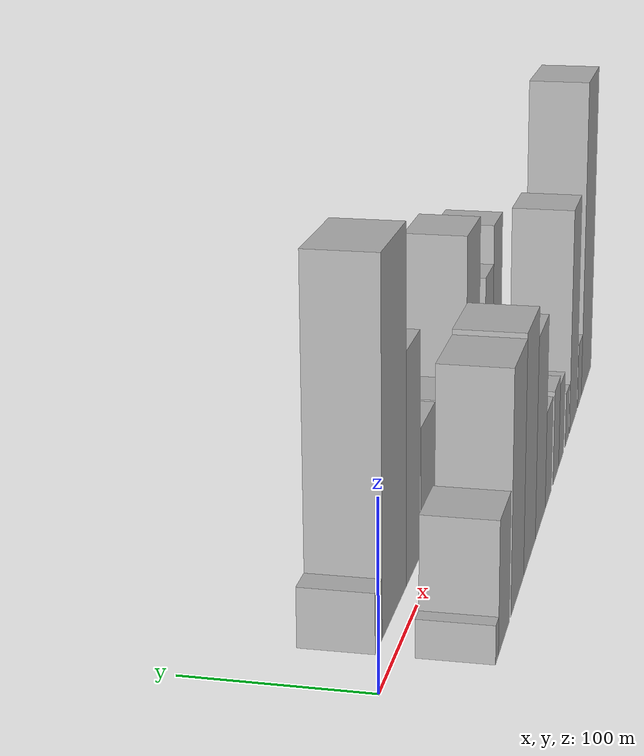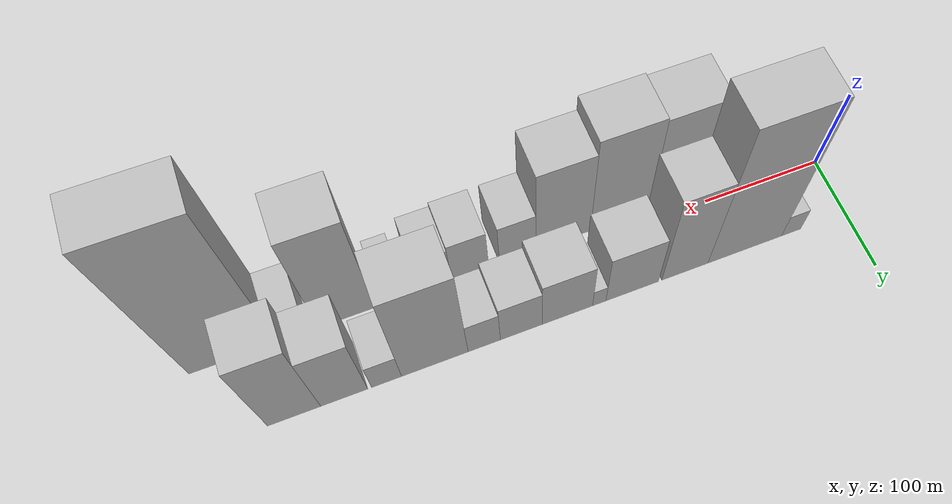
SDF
<sdf version="1.6">
 <world name="default">
  <scene>
   <sky><clouds><speed>12</speed></clouds></sky>
   <ambient>0.4 0.4 0.4 1</ambient>
   <background>0.7 0.7 0.7 1</background>
   <shadows>1</shadows>
  </scene>
  <gravity>0 0 -9.8066</gravity>
  <magnetic_field>6e-06 2.3e-05 -4.2e-05</magnetic_field>
  <physics default="0" name="default_physics" type="ode">
   <ode>
    <solver>
     <type>quick</type>
     <iters>10</iters>
     <sor>1.0</sor>
     <use_dynamic_moi_rescaling>0</use_dynamic_moi_rescaling>
    </solver>
    <constraints>
     <cfm>0</cfm>
     <erp>0.2</erp>
     <contact_max_correcting_vel>100</contact_max_correcting_vel>
     <contact_surface_layer>0.001</contact_surface_layer>
    </constraints>
   </ode>
   <max_step_size>0.004</max_step_size>
   <real_time_factor>1</real_time_factor>
   <real_time_update_rate>250</real_time_update_rate>
  </physics>
  <light name="sun" type="directional">
   <pose>0 0 10 0 0 0</pose>
   <diffuse>0.8 0.8 0.8 1</diffuse>
   <specular>0.2 0.2 0.2 1</specular>
   <attenuation>
    <range>1000</range>
    <constant>0.9</constant>
    <linear>0.01</linear>
    <quadratic>0.001</quadratic>
   </attenuation>
   <direction>-0.5 0.1 -0.9</direction>
  </light>
  <model name="building_1">
   <static>1</static>
   <pose>48.6336 30.0000 0 0.000000 0.000000 1.570796</pose>
   <link name="link">
    <pose>0 0 16.50 0 0 0</pose>
    <collision name="collision"><geometry><box><size>40.0000 17.2673 33.0000</size></box></geometry></collision>
    <visual name="visual">
     <cast_shadows>0</cast_shadows>
     <geometry><box><size>40.0000 17.2673 33.0000</size></box></geometry>
     <material>
      <script>
       <uri>model://HANNAS_wall/materials/scripts</uri>
       <uri>model://HANNAS_wall/materials/textures</uri>
       <name>vrc/HANNAS_wall</name>
      </script>
     </material>
    </visual>
   </link>
  </model>
  <model name="building_2">
   <static>1</static>
   <pose>89.6905 30.0000 0 0.000000 0.000000 1.570796</pose>
   <link name="link">
    <pose>0 0 100.50 0 0 0</pose>
    <collision name="collision"><geometry><box><size>40.0000 64.8464 201.0000</size></box></geometry></collision>
    <visual name="visual">
     <cast_shadows>0</cast_shadows>
     <geometry><box><size>40.0000 64.8464 201.0000</size></box></geometry>
     <material>
      <script>
       <uri>model://HANNAS_wall/materials/scripts</uri>
       <uri>model://HANNAS_wall/materials/textures</uri>
       <name>vrc/HANNAS_wall</name>
      </script>
     </material>
    </visual>
   </link>
  </model>
  <model name="building_3">
   <static>1</static>
   <pose>141.9586 30.0000 0 0.000000 0.000000 1.570796</pose>
   <link name="link">
    <pose>0 0 66.00 0 0 0</pose>
    <collision name="collision"><geometry><box><size>40.0000 39.6897 132.0000</size></box></geometry></collision>
    <visual name="visual">
     <cast_shadows>0</cast_shadows>
     <geometry><box><size>40.0000 39.6897 132.0000</size></box></geometry>
     <material>
      <script>
       <uri>model://HANNAS_wall/materials/scripts</uri>
       <uri>model://HANNAS_wall/materials/textures</uri>
       <name>vrc/HANNAS_wall</name>
      </script>
     </material>
    </visual>
   </link>
  </model>
  <model name="building_4">
   <static>1</static>
   <pose>187.0461 30.0000 0 0.000000 0.000000 1.570796</pose>
   <link name="link">
    <pose>0 0 37.50 0 0 0</pose>
    <collision name="collision"><geometry><box><size>40.0000 44.4853 75.0000</size></box></geometry></collision>
    <visual name="visual">
     <cast_shadows>0</cast_shadows>
     <geometry><box><size>40.0000 44.4853 75.0000</size></box></geometry>
     <material>
      <script>
       <uri>model://HANNAS_wall/materials/scripts</uri>
       <uri>model://HANNAS_wall/materials/textures</uri>
       <name>vrc/HANNAS_wall</name>
      </script>
     </material>
    </visual>
   </link>
  </model>
  <model name="building_5">
   <static>1</static>
   <pose>214.8924 30.0000 0 0.000000 0.000000 1.570796</pose>
   <link name="link">
    <pose>0 0 13.50 0 0 0</pose>
    <collision name="collision"><geometry><box><size>40.0000 11.2072 27.0000</size></box></geometry></collision>
    <visual name="visual">
     <cast_shadows>0</cast_shadows>
     <geometry><box><size>40.0000 11.2072 27.0000</size></box></geometry>
     <material>
      <script>
       <uri>model://HANNAS_wall/materials/scripts</uri>
       <uri>model://HANNAS_wall/materials/textures</uri>
       <name>vrc/HANNAS_wall</name>
      </script>
     </material>
    </visual>
   </link>
  </model>
  <model name="building_6">
   <static>1</static>
   <pose>241.4254 30.0000 0 0.000000 0.000000 1.570796</pose>
   <link name="link">
    <pose>0 0 36.00 0 0 0</pose>
    <collision name="collision"><geometry><box><size>40.0000 41.8588 72.0000</size></box></geometry></collision>
    <visual name="visual">
     <cast_shadows>0</cast_shadows>
     <geometry><box><size>40.0000 41.8588 72.0000</size></box></geometry>
     <material>
      <script>
       <uri>model://HANNAS_wall/materials/scripts</uri>
       <uri>model://HANNAS_wall/materials/textures</uri>
       <name>vrc/HANNAS_wall</name>
      </script>
     </material>
    </visual>
   </link>
  </model>
  <model name="building_7">
   <static>1</static>
   <pose>279.3528 30.0000 0 0.000000 0.000000 1.570796</pose>
   <link name="link">
    <pose>0 0 30.00 0 0 0</pose>
    <collision name="collision"><geometry><box><size>40.0000 33.9959 60.0000</size></box></geometry></collision>
    <visual name="visual">
     <cast_shadows>0</cast_shadows>
     <geometry><box><size>40.0000 33.9959 60.0000</size></box></geometry>
     <material>
      <script>
       <uri>model://HANNAS_wall/materials/scripts</uri>
       <uri>model://HANNAS_wall/materials/textures</uri>
       <name>vrc/HANNAS_wall</name>
      </script>
     </material>
    </visual>
   </link>
  </model>
  <model name="building_8">
   <static>1</static>
   <pose>309.3908 30.0000 0 0.000000 0.000000 1.570796</pose>
   <link name="link">
    <pose>0 0 25.50 0 0 0</pose>
    <collision name="collision"><geometry><box><size>40.0000 26.0800 51.0000</size></box></geometry></collision>
    <visual name="visual">
     <cast_shadows>0</cast_shadows>
     <geometry><box><size>40.0000 26.0800 51.0000</size></box></geometry>
     <material>
      <script>
       <uri>model://HANNAS_wall/materials/scripts</uri>
       <uri>model://HANNAS_wall/materials/textures</uri>
       <name>vrc/HANNAS_wall</name>
      </script>
     </material>
    </visual>
   </link>
  </model>
  <model name="building_9">
   <static>1</static>
   <pose>348.8653 30.0000 0 0.000000 0.000000 1.570796</pose>
   <link name="link">
    <pose>0 0 72.00 0 0 0</pose>
    <collision name="collision"><geometry><box><size>40.0000 52.8689 144.0000</size></box></geometry></collision>
    <visual name="visual">
     <cast_shadows>0</cast_shadows>
     <geometry><box><size>40.0000 52.8689 144.0000</size></box></geometry>
     <material>
      <script>
       <uri>model://HANNAS_wall/materials/scripts</uri>
       <uri>model://HANNAS_wall/materials/textures</uri>
       <name>vrc/HANNAS_wall</name>
      </script>
     </material>
    </visual>
   </link>
  </model>
  <model name="building_10">
   <static>1</static>
   <pose>386.9955 30.0000 0 0.000000 0.000000 1.570796</pose>
   <link name="link">
    <pose>0 0 21.00 0 0 0</pose>
    <collision name="collision"><geometry><box><size>40.0000 23.3917 42.0000</size></box></geometry></collision>
    <visual name="visual">
     <cast_shadows>0</cast_shadows>
     <geometry><box><size>40.0000 23.3917 42.0000</size></box></geometry>
     <material>
      <script>
       <uri>model://HANNAS_wall/materials/scripts</uri>
       <uri>model://HANNAS_wall/materials/textures</uri>
       <name>vrc/HANNAS_wall</name>
      </script>
     </material>
    </visual>
   </link>
  </model>
  <model name="building_11">
   <static>1</static>
   <pose>419.8561 30.0000 0 0.000000 0.000000 1.570796</pose>
   <link name="link">
    <pose>0 0 48.00 0 0 0</pose>
    <collision name="collision"><geometry><box><size>40.0000 36.3294 96.0000</size></box></geometry></collision>
    <visual name="visual">
     <cast_shadows>0</cast_shadows>
     <geometry><box><size>40.0000 36.3294 96.0000</size></box></geometry>
     <material>
      <script>
       <uri>model://HANNAS_wall/materials/scripts</uri>
       <uri>model://HANNAS_wall/materials/textures</uri>
       <name>vrc/HANNAS_wall</name>
      </script>
     </material>
    </visual>
   </link>
  </model>
  <model name="building_12">
   <static>1</static>
   <pose>458.2230 30.0000 0 0.000000 0.000000 1.570796</pose>
   <link name="link">
    <pose>0 0 61.50 0 0 0</pose>
    <collision name="collision"><geometry><box><size>40.0000 40.4044 123.0000</size></box></geometry></collision>
    <visual name="visual">
     <cast_shadows>0</cast_shadows>
     <geometry><box><size>40.0000 40.4044 123.0000</size></box></geometry>
     <material>
      <script>
       <uri>model://HANNAS_wall/materials/scripts</uri>
       <uri>model://HANNAS_wall/materials/textures</uri>
       <name>vrc/HANNAS_wall</name>
      </script>
     </material>
    </visual>
   </link>
  </model>
  <model name="building_13">
   <static>1</static>
   <pose>44.9493 -30.0000 0 0.000000 0.000000 1.570796</pose>
   <link name="link">
    <pose>0 0 10.50 0 0 0</pose>
    <collision name="collision"><geometry><box><size>40.0000 9.8985 21.0000</size></box></geometry></collision>
    <visual name="visual">
     <cast_shadows>0</cast_shadows>
     <geometry><box><size>40.0000 9.8985 21.0000</size></box></geometry>
     <material>
      <script>
       <uri>model://HANNAS_wall/materials/scripts</uri>
       <uri>model://HANNAS_wall/materials/textures</uri>
       <name>vrc/HANNAS_wall</name>
      </script>
     </material>
    </visual>
   </link>
  </model>
  <model name="building_14">
   <static>1</static>
   <pose>69.4483 -30.0000 0 0.000000 0.000000 1.570796</pose>
   <link name="link">
    <pose>0 0 36.00 0 0 0</pose>
    <collision name="collision"><geometry><box><size>40.0000 39.0995 72.0000</size></box></geometry></collision>
    <visual name="visual">
     <cast_shadows>0</cast_shadows>
     <geometry><box><size>40.0000 39.0995 72.0000</size></box></geometry>
     <material>
      <script>
       <uri>model://HANNAS_wall/materials/scripts</uri>
       <uri>model://HANNAS_wall/materials/textures</uri>
       <name>vrc/HANNAS_wall</name>
      </script>
     </material>
    </visual>
   </link>
  </model>
  <model name="building_15">
   <static>1</static>
   <pose>120.4078 -30.0000 0 0.000000 0.000000 1.570796</pose>
   <link name="link">
    <pose>0 0 67.50 0 0 0</pose>
    <collision name="collision"><geometry><box><size>40.0000 50.8197 135.0000</size></box></geometry></collision>
    <visual name="visual">
     <cast_shadows>0</cast_shadows>
     <geometry><box><size>40.0000 50.8197 135.0000</size></box></geometry>
     <material>
      <script>
       <uri>model://HANNAS_wall/materials/scripts</uri>
       <uri>model://HANNAS_wall/materials/textures</uri>
       <name>vrc/HANNAS_wall</name>
      </script>
     </material>
    </visual>
   </link>
  </model>
  <model name="building_16">
   <static>1</static>
   <pose>171.4728 -30.0000 0 0.000000 0.000000 1.570796</pose>
   <link name="link">
    <pose>0 0 69.00 0 0 0</pose>
    <collision name="collision"><geometry><box><size>40.0000 51.3102 138.0000</size></box></geometry></collision>
    <visual name="visual">
     <cast_shadows>0</cast_shadows>
     <geometry><box><size>40.0000 51.3102 138.0000</size></box></geometry>
     <material>
      <script>
       <uri>model://HANNAS_wall/materials/scripts</uri>
       <uri>model://HANNAS_wall/materials/textures</uri>
       <name>vrc/HANNAS_wall</name>
      </script>
     </material>
    </visual>
   </link>
  </model>
  <model name="building_17">
   <static>1</static>
   <pose>220.5222 -30.0000 0 0.000000 0.000000 1.570796</pose>
   <link name="link">
    <pose>0 0 60.00 0 0 0</pose>
    <collision name="collision"><geometry><box><size>40.0000 46.7887 120.0000</size></box></geometry></collision>
    <visual name="visual">
     <cast_shadows>0</cast_shadows>
     <geometry><box><size>40.0000 46.7887 120.0000</size></box></geometry>
     <material>
      <script>
       <uri>model://HANNAS_wall/materials/scripts</uri>
       <uri>model://HANNAS_wall/materials/textures</uri>
       <name>vrc/HANNAS_wall</name>
      </script>
     </material>
    </visual>
   </link>
  </model>
  <model name="building_18">
   <static>1</static>
   <pose>259.2537 -30.0000 0 0.000000 0.000000 1.570796</pose>
   <link name="link">
    <pose>0 0 30.00 0 0 0</pose>
    <collision name="collision"><geometry><box><size>40.0000 30.6743 60.0000</size></box></geometry></collision>
    <visual name="visual">
     <cast_shadows>0</cast_shadows>
     <geometry><box><size>40.0000 30.6743 60.0000</size></box></geometry>
     <material>
      <script>
       <uri>model://HANNAS_wall/materials/scripts</uri>
       <uri>model://HANNAS_wall/materials/textures</uri>
       <name>vrc/HANNAS_wall</name>
      </script>
     </material>
    </visual>
   </link>
  </model>
  <model name="building_19">
   <static>1</static>
   <pose>299.0640 -30.0000 0 0.000000 0.000000 1.570796</pose>
   <link name="link">
    <pose>0 0 30.00 0 0 0</pose>
    <collision name="collision"><geometry><box><size>40.0000 30.9463 60.0000</size></box></geometry></collision>
    <visual name="visual">
     <cast_shadows>0</cast_shadows>
     <geometry><box><size>40.0000 30.9463 60.0000</size></box></geometry>
     <material>
      <script>
       <uri>model://HANNAS_wall/materials/scripts</uri>
       <uri>model://HANNAS_wall/materials/textures</uri>
       <name>vrc/HANNAS_wall</name>
      </script>
     </material>
    </visual>
   </link>
  </model>
  <model name="building_20">
   <static>1</static>
   <pose>328.0659 -30.0000 0 0.000000 0.000000 1.570796</pose>
   <link name="link">
    <pose>0 0 27.00 0 0 0</pose>
    <collision name="collision"><geometry><box><size>40.0000 27.0576 54.0000</size></box></geometry></collision>
    <visual name="visual">
     <cast_shadows>0</cast_shadows>
     <geometry><box><size>40.0000 27.0576 54.0000</size></box></geometry>
     <material>
      <script>
       <uri>model://HANNAS_wall/materials/scripts</uri>
       <uri>model://HANNAS_wall/materials/textures</uri>
       <name>vrc/HANNAS_wall</name>
      </script>
     </material>
    </visual>
   </link>
  </model>
  <model name="building_21">
   <static>1</static>
   <pose>361.3091 -30.0000 0 0.000000 0.000000 1.570796</pose>
   <link name="link">
    <pose>0 0 18.00 0 0 0</pose>
    <collision name="collision"><geometry><box><size>40.0000 19.4288 36.0000</size></box></geometry></collision>
    <visual name="visual">
     <cast_shadows>0</cast_shadows>
     <geometry><box><size>40.0000 19.4288 36.0000</size></box></geometry>
     <material>
      <script>
       <uri>model://HANNAS_wall/materials/scripts</uri>
       <uri>model://HANNAS_wall/materials/textures</uri>
       <name>vrc/HANNAS_wall</name>
      </script>
     </material>
    </visual>
   </link>
  </model>
  <model name="building_22">
   <static>1</static>
   <pose>399.7048 -30.0000 0 0.000000 0.000000 1.570796</pose>
   <link name="link">
    <pose>0 0 75.00 0 0 0</pose>
    <collision name="collision"><geometry><box><size>40.0000 45.3625 150.0000</size></box></geometry></collision>
    <visual name="visual">
     <cast_shadows>0</cast_shadows>
     <geometry><box><size>40.0000 45.3625 150.0000</size></box></geometry>
     <material>
      <script>
       <uri>model://HANNAS_wall/materials/scripts</uri>
       <uri>model://HANNAS_wall/materials/textures</uri>
       <name>vrc/HANNAS_wall</name>
      </script>
     </material>
    </visual>
   </link>
  </model>
  <model name="building_23">
   <static>1</static>
   <pose>441.1573 -30.0000 0 0.000000 0.000000 1.570796</pose>
   <link name="link">
    <pose>0 0 22.50 0 0 0</pose>
    <collision name="collision"><geometry><box><size>40.0000 25.5424 45.0000</size></box></geometry></collision>
    <visual name="visual">
     <cast_shadows>0</cast_shadows>
     <geometry><box><size>40.0000 25.5424 45.0000</size></box></geometry>
     <material>
      <script>
       <uri>model://HANNAS_wall/materials/scripts</uri>
       <uri>model://HANNAS_wall/materials/textures</uri>
       <name>vrc/HANNAS_wall</name>
      </script>
     </material>
    </visual>
   </link>
  </model>
  <model name="building_24">
   <static>1</static>
   <pose>488.4590 -30.0000 0 0.000000 0.000000 1.570796</pose>
   <link name="link">
    <pose>0 0 109.50 0 0 0</pose>
    <collision name="collision"><geometry><box><size>40.0000 69.0610 219.0000</size></box></geometry></collision>
    <visual name="visual">
     <cast_shadows>0</cast_shadows>
     <geometry><box><size>40.0000 69.0610 219.0000</size></box></geometry>
     <material>
      <script>
       <uri>model://HANNAS_wall/materials/scripts</uri>
       <uri>model://HANNAS_wall/materials/textures</uri>
       <name>vrc/HANNAS_wall</name>
      </script>
     </material>
    </visual>
   </link>
  </model>
 </world>
</sdf>
